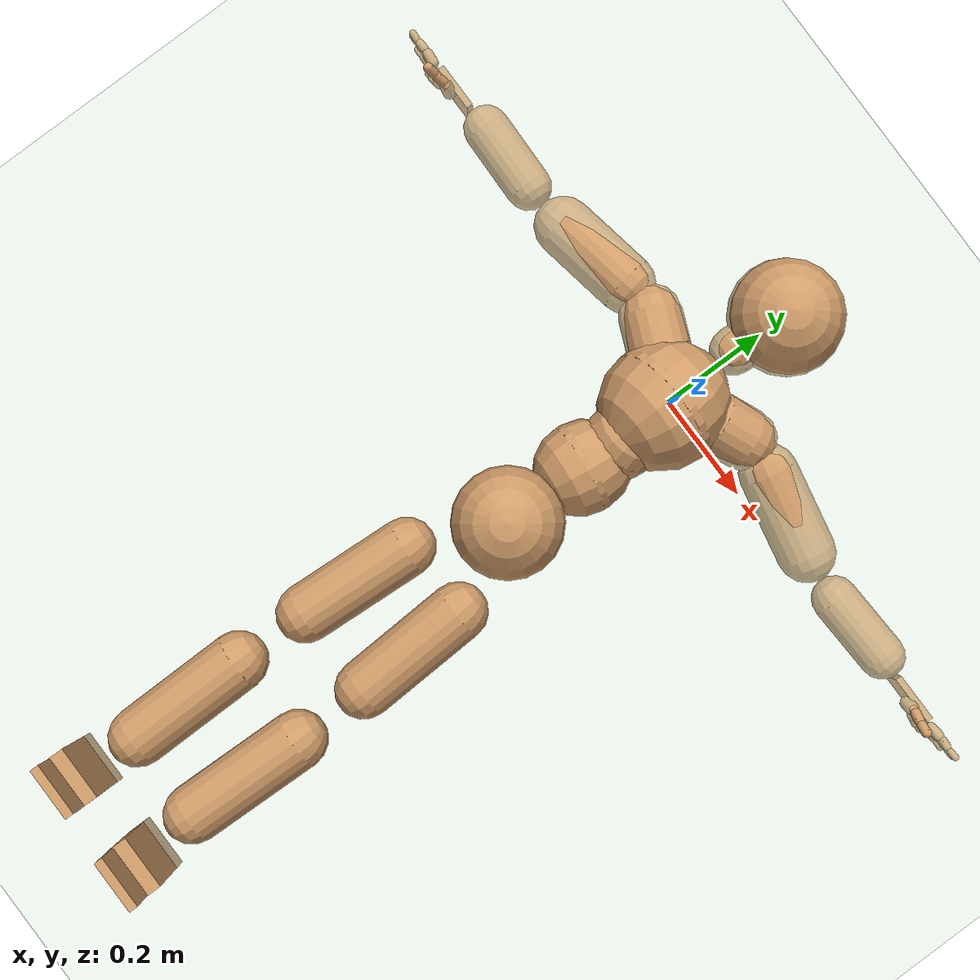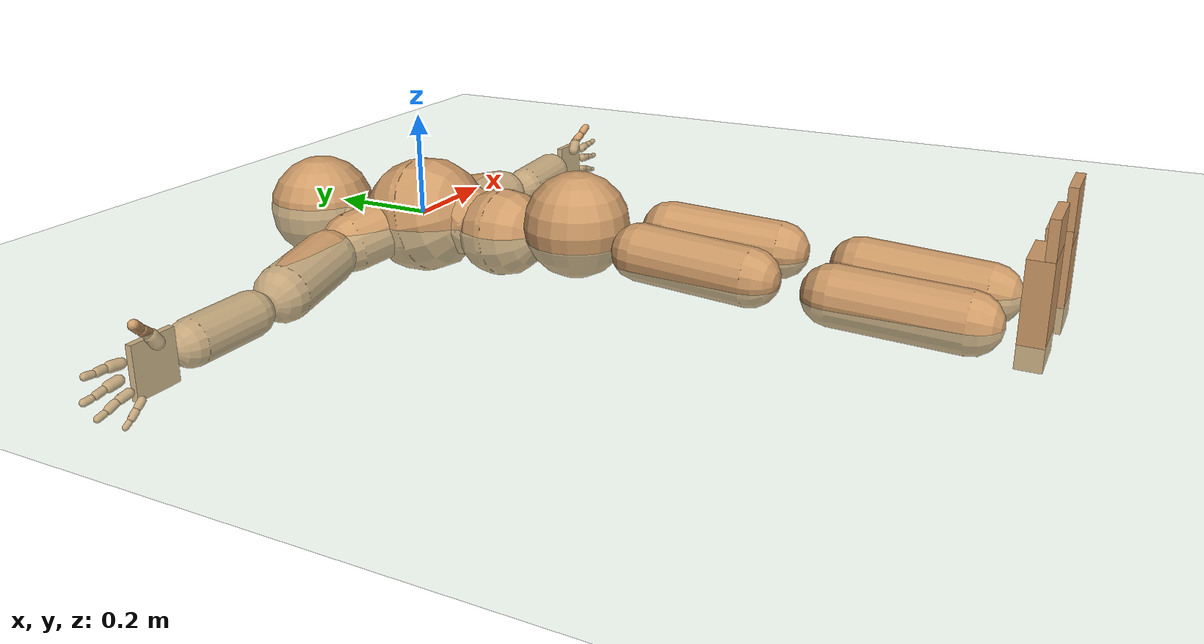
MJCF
<mujoco model="humanoid">
  <compiler coordinate="local"/>
  <default>
    <joint damping="0.0" armature="0.01" stiffness="0.0" limited="true"/>
    <geom conaffinity="1" condim="3" contype="7" margin="0.001" rgba="0.8 0.6 .4 1"/>
  </default>
  <asset>
    <texture type="skybox" builtin="gradient" rgb1=".4 .5 .6" rgb2="0 0 0" width="100" height="100"/>
    <texture builtin="flat" height="1278" mark="cross" markrgb="1 1 1" name="texgeom" random="0.01" rgb1="0.8 0.6 0.4" rgb2="0.8 0.6 0.4" type="cube" width="127"/>
    <texture builtin="checker" height="100" name="texplane" rgb1="0 0 0" rgb2="0.8 0.8 0.8" type="2d" width="100"/>
    <material name="MatPlane" reflectance="0.5" shininess="1" specular="1" texrepeat="60 60" texture="texplane"/>
    <material name="geom" texture="texgeom" texuniform="true"/>
  </asset>
  <worldbody>
    <light cutoff="100" diffuse="1 1 1" dir="-0 0 -1.3" directional="true" exponent="1" pos="0 0 1.3" specular=".1 .1 .1"/>
    <geom conaffinity="1" condim="3" name="floor" pos="0 0 0" rgba="0.8 0.9 0.8 1" size="100 100 .2" type="plane" material="MatPlane"/>
    <body name="Pelvis" pos="0.0002 -0.3532 0.0255">
      <freejoint name="Pelvis"/>
      <geom type="sphere" contype="1" conaffinity="1" density="4629.6296296296305" size="0.1012" pos="0.0000 0.0000 0.0000" name="Pelvis"/>
      <body name="L_Hip" pos="0.0688 -0.0903 -0.0022">
        <joint name="L_Hip_x" type="hinge" pos="0 0 0" axis="1 0 0" stiffness="800" damping="80" armature="0.02" range="-90.0000 90.0000"/>
        <joint name="L_Hip_y" type="hinge" pos="0 0 0" axis="0 1 0" stiffness="800" damping="80" armature="0.02" range="-90.0000 90.0000"/>
        <joint name="L_Hip_z" type="hinge" pos="0 0 0" axis="0 0 1" stiffness="800" damping="80" armature="0.02" range="-90.0000 90.0000"/>
        <geom type="capsule" contype="1" conaffinity="1" density="2040.816327" fromto="0.0035 -0.0711 -0.0041 0.0142 -0.2844 -0.0162" size="0.053" name="L_Hip"/>
        <body name="L_Knee" pos="0.0177 -0.3555 -0.0203">
          <joint name="L_Knee_x" type="hinge" pos="0 0 0" axis="1 0 0" stiffness="800" damping="80" armature="0.02" range="-180.0000 180.0000"/>
          <joint name="L_Knee_y" type="hinge" pos="0 0 0" axis="0 1 0" stiffness="800" damping="80" armature="0.02" range="-5.6250 5.6250"/>
          <joint name="L_Knee_z" type="hinge" pos="0 0 0" axis="0 0 1" stiffness="800" damping="80" armature="0.02" range="-5.6250 5.6250"/>
          <geom type="capsule" contype="1" conaffinity="1" density="1234.567901" fromto="-0.0018 -0.0755 -0.0035 -0.0072 -0.3019 -0.0139" size="0.0535" name="L_Knee"/>
          <body name="L_Ankle" pos="-0.009 -0.3774 -0.0174">
            <joint name="L_Ankle_x" type="hinge" pos="0 0 0" axis="1 0 0" stiffness="800" damping="80" armature="0.02" range="-90.0000 90.0000"/>
            <joint name="L_Ankle_y" type="hinge" pos="0 0 0" axis="0 1 0" stiffness="800" damping="80" armature="0.02" range="-90.0000 90.0000"/>
            <joint name="L_Ankle_z" type="hinge" pos="0 0 0" axis="0 0 1" stiffness="800" damping="80" armature="0.02" range="-90.0000 90.0000"/>
            <geom type="box" contype="1" conaffinity="1" density="1000.00005" pos="0.0111 -0.0220 0.0544" size="0.0497 0.0209 0.0875" quat="1.0000 0.0000 0.0000 0.0000" name="L_Ankle"/>
            <body name="L_Toe" pos="0.0223 -0.044 0.1088">
              <joint name="L_Toe_x" type="hinge" pos="0 0 0" axis="1 0 0" stiffness="500" damping="50" armature="0.02" range="-90.0000 90.0000"/>
              <joint name="L_Toe_y" type="hinge" pos="0 0 0" axis="0 1 0" stiffness="500" damping="50" armature="0.02" range="-45.0000 45.0000"/>
              <joint name="L_Toe_z" type="hinge" pos="0 0 0" axis="0 0 1" stiffness="500" damping="50" armature="0.02" range="-45.0000 45.0000"/>
              <geom type="box" contype="1" conaffinity="1" density="1000.000047" pos="-0.0111 0.0091 0.0554" size="0.0491 0.0081 0.0491" quat="1.0000 0.0000 0.0000 0.0000" name="L_Toe"/>
            </body>
          </body>
        </body>
      </body>
      <body name="R_Hip" pos="-0.0677 -0.0965 -0.0041">
        <joint name="R_Hip_x" type="hinge" pos="0 0 0" axis="1 0 0" stiffness="800" damping="80" armature="0.02" range="-90.0000 90.0000"/>
        <joint name="R_Hip_y" type="hinge" pos="0 0 0" axis="0 1 0" stiffness="800" damping="80" armature="0.02" range="-90.0000 90.0000"/>
        <joint name="R_Hip_z" type="hinge" pos="0 0 0" axis="0 0 1" stiffness="800" damping="80" armature="0.02" range="-90.0000 90.0000"/>
        <geom type="capsule" contype="1" conaffinity="1" density="2040.816327" fromto="-0.0042 -0.0703 -0.0027 -0.0168 -0.2813 -0.0108" size="0.0528" name="R_Hip"/>
        <body name="R_Knee" pos="-0.0211 -0.3516 -0.0135">
          <joint name="R_Knee_x" type="hinge" pos="0 0 0" axis="1 0 0" stiffness="800" damping="80" armature="0.02" range="-180.0000 180.0000"/>
          <joint name="R_Knee_y" type="hinge" pos="0 0 0" axis="0 1 0" stiffness="800" damping="80" armature="0.02" range="-5.6250 5.6250"/>
          <joint name="R_Knee_z" type="hinge" pos="0 0 0" axis="0 0 1" stiffness="800" damping="80" armature="0.02" range="-5.6250 5.6250"/>
          <geom type="capsule" contype="1" conaffinity="1" density="1234.567901" fromto="0.0007 -0.0737 -0.0027 0.0026 -0.2949 -0.0110" size="0.0534" name="R_Knee"/>
          <body name="R_Ankle" pos="0.0033 -0.3686 -0.0137">
            <joint name="R_Ankle_x" type="hinge" pos="0 0 0" axis="1 0 0" stiffness="800" damping="80" armature="0.02" range="-90.0000 90.0000"/>
            <joint name="R_Ankle_y" type="hinge" pos="0 0 0" axis="0 1 0" stiffness="800" damping="80" armature="0.02" range="-90.0000 90.0000"/>
            <joint name="R_Ankle_z" type="hinge" pos="0 0 0" axis="0 0 1" stiffness="800" damping="80" armature="0.02" range="-90.0000 90.0000"/>
            <geom type="box" contype="1" conaffinity="1" density="999.99999" pos="-0.0088 -0.0237 0.0513" size="0.0497 0.0209 0.0875" quat="1.0000 0.0000 0.0000 0.0000" name="R_Ankle"/>
            <body name="R_Toe" pos="-0.0175 -0.0473 0.1027">
              <joint name="R_Toe_x" type="hinge" pos="0 0 0" axis="1 0 0" stiffness="500" damping="50" armature="0.02" range="-90.0000 90.0000"/>
              <joint name="R_Toe_y" type="hinge" pos="0 0 0" axis="0 1 0" stiffness="500" damping="50" armature="0.02" range="-45.0000 45.0000"/>
              <joint name="R_Toe_z" type="hinge" pos="0 0 0" axis="0 0 1" stiffness="500" damping="50" armature="0.02" range="-45.0000 45.0000"/>
              <geom type="box" contype="1" conaffinity="1" density="999.999877" pos="0.0088 0.0108 0.0523" size="0.0491 0.0081 0.0491" quat="1.0000 0.0000 0.0000 0.0000" name="R_Toe"/>
            </body>
          </body>
        </body>
      </body>
      <body name="Torso" pos="-0.0055 0.1042 -0.0338">
        <joint name="Torso_x" type="hinge" pos="0 0 0" axis="1 0 0" stiffness="1000" damping="100" armature="0.02" range="-60.0000 60.0000"/>
        <joint name="Torso_y" type="hinge" pos="0 0 0" axis="0 1 0" stiffness="1000" damping="100" armature="0.02" range="-60.0000 60.0000"/>
        <joint name="Torso_z" type="hinge" pos="0 0 0" axis="0 0 1" stiffness="1000" damping="100" armature="0.02" range="-60.0000 60.0000"/>
        <geom type="capsule" contype="1" conaffinity="1" density="2040.816327" fromto="0.0059 0.0533 -0.0050 0.0072 0.0652 -0.0061" size="0.0846" name="Torso"/>
        <body name="Spine" pos="0.0131 0.1185 -0.0112">
          <joint name="Spine_x" type="hinge" pos="0 0 0" axis="1 0 0" stiffness="1000" damping="100" armature="0.02" range="-60.0000 60.0000"/>
          <joint name="Spine_y" type="hinge" pos="0 0 0" axis="0 1 0" stiffness="1000" damping="100" armature="0.02" range="-60.0000 60.0000"/>
          <joint name="Spine_z" type="hinge" pos="0 0 0" axis="0 0 1" stiffness="1000" damping="100" armature="0.02" range="-60.0000 60.0000"/>
          <geom type="capsule" contype="1" conaffinity="1" density="2040.816327" fromto="-0.0035 0.0204 0.0159 -0.0042 0.0249 0.0195" size="0.0687" name="Spine"/>
          <body name="Chest" pos="-0.0077 0.0453 0.0354">
            <joint name="Chest_x" type="hinge" pos="0 0 0" axis="1 0 0" stiffness="1000" damping="100" armature="0.02" range="-60.0000 60.0000"/>
            <joint name="Chest_y" type="hinge" pos="0 0 0" axis="0 1 0" stiffness="1000" damping="100" armature="0.02" range="-60.0000 60.0000"/>
            <joint name="Chest_z" type="hinge" pos="0 0 0" axis="0 0 1" stiffness="1000" damping="100" armature="0.02" range="-60.0000 60.0000"/>
            <geom type="capsule" contype="1" conaffinity="1" density="2040.816327" fromto="-0.0015 0.0677 -0.0157 -0.0018 0.0827 -0.0192" size="0.1139" name="Chest"/>
            <body name="Neck" pos="-0.0065 0.2095 -0.0512">
              <joint name="Neck_x" type="hinge" pos="0 0 0" axis="1 0 0" stiffness="500" damping="50" armature="0.02" range="-180.0000 180.0000"/>
              <joint name="Neck_y" type="hinge" pos="0 0 0" axis="0 1 0" stiffness="500" damping="50" armature="0.02" range="-180.0000 180.0000"/>
              <joint name="Neck_z" type="hinge" pos="0 0 0" axis="0 0 1" stiffness="500" damping="50" armature="0.02" range="-180.0000 180.0000"/>
              <geom type="capsule" contype="1" conaffinity="1" density="1000" fromto="0.0019 0.0273 0.0024 0.0077 0.1090 0.0096" size="0.044" name="Neck"/>
              <body name="Head" pos="0.0097 0.1363 0.012">
                <joint name="Head_x" type="hinge" pos="0 0 0" axis="1 0 0" stiffness="500" damping="50" armature="0.02" range="-90.0000 90.0000"/>
                <joint name="Head_y" type="hinge" pos="0 0 0" axis="0 1 0" stiffness="500" damping="50" armature="0.02" range="-90.0000 90.0000"/>
                <joint name="Head_z" type="hinge" pos="0 0 0" axis="0 0 1" stiffness="500" damping="50" armature="0.02" range="-90.0000 90.0000"/>
                <geom type="sphere" contype="1" conaffinity="1" density="1000" size="0.1068" pos="0.0000 0.0000 0.0000" name="Head"/>
              </body>
            </body>
            <body name="L_Thorax" pos="0.0577 0.1229 -0.0233">
              <joint name="L_Thorax_x" type="hinge" pos="0 0 0" axis="1 0 0" stiffness="500" damping="50" armature="0.02" range="-180.0000 180.0000"/>
              <joint name="L_Thorax_y" type="hinge" pos="0 0 0" axis="0 1 0" stiffness="500" damping="50" armature="0.02" range="-180.0000 180.0000"/>
              <joint name="L_Thorax_z" type="hinge" pos="0 0 0" axis="0 0 1" stiffness="500" damping="50" armature="0.02" range="-180.0000 180.0000"/>
              <geom type="capsule" contype="1" conaffinity="1" density="1000" fromto="0.0191 0.0089 -0.0058 0.0764 0.0354 -0.0234" size="0.0571" name="L_Thorax"/>
              <body name="L_Shoulder" pos="0.0955 0.0443 -0.0292">
                <joint name="L_Shoulder_x" type="hinge" pos="0 0 0" axis="1 0 0" stiffness="500" damping="50" armature="0.02" range="-180.0000 180.0000"/>
                <joint name="L_Shoulder_y" type="hinge" pos="0 0 0" axis="0 1 0" stiffness="500" damping="50" armature="0.02" range="-180.0000 180.0000"/>
                <joint name="L_Shoulder_z" type="hinge" pos="0 0 0" axis="0 0 1" stiffness="500" damping="50" armature="0.02" range="-180.0000 180.0000"/>
                <geom type="capsule" contype="1" conaffinity="1" density="1000" fromto="0.0529 -0.0099 -0.0064 0.2117 -0.0395 -0.0254" size="0.0535" name="L_Shoulder"/>
                <body name="L_Elbow" pos="0.2647 -0.0493 -0.0318">
                  <joint name="L_Elbow_x" type="hinge" pos="0 0 0" axis="1 0 0" stiffness="500" damping="50" armature="0.02" range="-720.0000 720.0000"/>
                  <joint name="L_Elbow_y" type="hinge" pos="0 0 0" axis="0 1 0" stiffness="500" damping="50" armature="0.02" range="-720.0000 720.0000"/>
                  <joint name="L_Elbow_z" type="hinge" pos="0 0 0" axis="0 0 1" stiffness="500" damping="50" armature="0.02" range="-720.0000 720.0000"/>
                  <geom type="capsule" contype="1" conaffinity="1" density="1000" fromto="0.0435 0.0019 0.0015 0.1742 0.0077 0.0060" size="0.0423" name="L_Elbow"/>
                  <body name="L_Wrist" pos="0.2177 0.0096 0.0075">
                    <joint name="L_Wrist_x" type="hinge" pos="0 0 0" axis="1 0 0" stiffness="300" damping="30" armature="0.02" range="-180.0000 180.0000"/>
                    <joint name="L_Wrist_y" type="hinge" pos="0 0 0" axis="0 1 0" stiffness="300" damping="30" armature="0.02" range="-180.0000 180.0000"/>
                    <joint name="L_Wrist_z" type="hinge" pos="0 0 0" axis="0 0 1" stiffness="300" damping="30" armature="0.02" range="-180.0000 180.0000"/>
                    <geom type="box" contype="1" conaffinity="1" density="2541.499718" pos="0.0416 -0.0074 -0.0022" size="0.0462 0.0059 0.0479" quat="1.0000 0.0000 0.0000 0.0000" name="L_Wrist"/>
                    <body name="L_Index1" pos="0.0987 -0.0117 0.0223">
                      <joint name="L_Index1_x" type="hinge" pos="0 0 0" axis="1 0 0" stiffness="100" damping="10" armature="0.02" range="-180.0000 180.0000"/>
                      <joint name="L_Index1_y" type="hinge" pos="0 0 0" axis="0 1 0" stiffness="100" damping="10" armature="0.02" range="-180.0000 180.0000"/>
                      <joint name="L_Index1_z" type="hinge" pos="0 0 0" axis="0 0 1" stiffness="100" damping="10" armature="0.02" range="-180.0000 180.0000"/>
                      <geom type="capsule" contype="1" conaffinity="1" density="1000" fromto="0.0063 0.0007 0.0006 0.0253 0.0027 0.0023" size="0.0094" name="L_Index1"/>
                      <body name="L_Index2" pos="0.0316 0.0034 0.0029">
                        <joint name="L_Index2_x" type="hinge" pos="0 0 0" axis="1 0 0" stiffness="100" damping="10" armature="0.02" range="-180.0000 180.0000"/>
                        <joint name="L_Index2_y" type="hinge" pos="0 0 0" axis="0 1 0" stiffness="100" damping="10" armature="0.02" range="-180.0000 180.0000"/>
                        <joint name="L_Index2_z" type="hinge" pos="0 0 0" axis="0 0 1" stiffness="100" damping="10" armature="0.02" range="-180.0000 180.0000"/>
                        <geom type="capsule" contype="1" conaffinity="1" density="1000" fromto="0.0044 -0.0003 0.0001 0.0177 -0.0010 0.0003" size="0.0076" name="L_Index2"/>
                        <body name="L_Index3" pos="0.0221 -0.0013 0.0004">
                          <joint name="L_Index3_x" type="hinge" pos="0 0 0" axis="1 0 0" stiffness="100" damping="10" armature="0.02" range="-180.0000 180.0000"/>
                          <joint name="L_Index3_y" type="hinge" pos="0 0 0" axis="0 1 0" stiffness="100" damping="10" armature="0.02" range="-180.0000 180.0000"/>
                          <joint name="L_Index3_z" type="hinge" pos="0 0 0" axis="0 0 1" stiffness="100" damping="10" armature="0.02" range="-180.0000 180.0000"/>
                          <geom type="capsule" contype="1" conaffinity="1" density="1000" fromto="0.0048 0.0001 0.0005 0.0193 0.0006 0.0019" size="0.0063" name="L_Index3"/>
                        </body>
                      </body>
                    </body>
                    <body name="L_Middle1" pos="0.1058 -0.0092 -0.0026">
                      <joint name="L_Middle1_x" type="hinge" pos="0 0 0" axis="1 0 0" stiffness="100" damping="10" armature="0.02" range="-180.0000 180.0000"/>
                      <joint name="L_Middle1_y" type="hinge" pos="0 0 0" axis="0 1 0" stiffness="100" damping="10" armature="0.02" range="-180.0000 180.0000"/>
                      <joint name="L_Middle1_z" type="hinge" pos="0 0 0" axis="0 0 1" stiffness="100" damping="10" armature="0.02" range="-180.0000 180.0000"/>
                      <geom type="capsule" contype="1" conaffinity="1" density="1000" fromto="0.0060 0.0003 -0.0008 0.0239 0.0013 -0.0033" size="0.0098" name="L_Middle1"/>
                      <body name="L_Middle2" pos="0.0299 0.0016 -0.0041">
                        <joint name="L_Middle2_x" type="hinge" pos="0 0 0" axis="1 0 0" stiffness="100" damping="10" armature="0.02" range="-180.0000 180.0000"/>
                        <joint name="L_Middle2_y" type="hinge" pos="0 0 0" axis="0 1 0" stiffness="100" damping="10" armature="0.02" range="-180.0000 180.0000"/>
                        <joint name="L_Middle2_z" type="hinge" pos="0 0 0" axis="0 0 1" stiffness="100" damping="10" armature="0.02" range="-180.0000 180.0000"/>
                        <geom type="capsule" contype="1" conaffinity="1" density="1000" fromto="0.0046 -0.0002 -0.0008 0.0184 -0.0006 -0.0032" size="0.0071" name="L_Middle2"/>
                        <body name="L_Middle3" pos="0.023 -0.0008 -0.004">
                          <joint name="L_Middle3_x" type="hinge" pos="0 0 0" axis="1 0 0" stiffness="100" damping="10" armature="0.02" range="-180.0000 180.0000"/>
                          <joint name="L_Middle3_y" type="hinge" pos="0 0 0" axis="0 1 0" stiffness="100" damping="10" armature="0.02" range="-180.0000 180.0000"/>
                          <joint name="L_Middle3_z" type="hinge" pos="0 0 0" axis="0 0 1" stiffness="100" damping="10" armature="0.02" range="-180.0000 180.0000"/>
                          <geom type="capsule" contype="1" conaffinity="1" density="1000" fromto="0.0050 0.0002 -0.0004 0.0200 0.0010 -0.0016" size="0.0061" name="L_Middle3"/>
                        </body>
                      </body>
                    </body>
                    <body name="L_Pinky1" pos="0.0797 -0.0188 -0.0443">
                      <joint name="L_Pinky1_x" type="hinge" pos="0 0 0" axis="1 0 0" stiffness="100" damping="10" armature="0.02" range="-180.0000 180.0000"/>
                      <joint name="L_Pinky1_y" type="hinge" pos="0 0 0" axis="0 1 0" stiffness="100" damping="10" armature="0.02" range="-180.0000 180.0000"/>
                      <joint name="L_Pinky1_z" type="hinge" pos="0 0 0" axis="0 0 1" stiffness="100" damping="10" armature="0.02" range="-180.0000 180.0000"/>
                      <geom type="capsule" contype="1" conaffinity="1" density="1000" fromto="0.0029 -0.0001 -0.0025 0.0118 -0.0004 -0.0100" size="0.0069" name="L_Pinky1"/>
                      <body name="L_Pinky2" pos="0.0147 -0.0006 -0.0125">
                        <joint name="L_Pinky2_x" type="hinge" pos="0 0 0" axis="1 0 0" stiffness="100" damping="10" armature="0.02" range="-180.0000 180.0000"/>
                        <joint name="L_Pinky2_y" type="hinge" pos="0 0 0" axis="0 1 0" stiffness="100" damping="10" armature="0.02" range="-180.0000 180.0000"/>
                        <joint name="L_Pinky2_z" type="hinge" pos="0 0 0" axis="0 0 1" stiffness="100" damping="10" armature="0.02" range="-180.0000 180.0000"/>
                        <geom type="capsule" contype="1" conaffinity="1" density="1000" fromto="0.0030 -0.0002 -0.0023 0.0118 -0.0008 -0.0093" size="0.0066" name="L_Pinky2"/>
                        <body name="L_Pinky3" pos="0.0148 -0.001 -0.0117">
                          <joint name="L_Pinky3_x" type="hinge" pos="0 0 0" axis="1 0 0" stiffness="100" damping="10" armature="0.02" range="-180.0000 180.0000"/>
                          <joint name="L_Pinky3_y" type="hinge" pos="0 0 0" axis="0 1 0" stiffness="100" damping="10" armature="0.02" range="-180.0000 180.0000"/>
                          <joint name="L_Pinky3_z" type="hinge" pos="0 0 0" axis="0 0 1" stiffness="100" damping="10" armature="0.02" range="-180.0000 180.0000"/>
                          <geom type="capsule" contype="1" conaffinity="1" density="1000" fromto="0.0034 0.0002 -0.0019 0.0134 0.0008 -0.0077" size="0.0049" name="L_Pinky3"/>
                        </body>
                      </body>
                    </body>
                    <body name="L_Ring1" pos="0.0933 -0.0127 -0.0276">
                      <joint name="L_Ring1_x" type="hinge" pos="0 0 0" axis="1 0 0" stiffness="100" damping="10" armature="0.02" range="-180.0000 180.0000"/>
                      <joint name="L_Ring1_y" type="hinge" pos="0 0 0" axis="0 1 0" stiffness="100" damping="10" armature="0.02" range="-180.0000 180.0000"/>
                      <joint name="L_Ring1_z" type="hinge" pos="0 0 0" axis="0 0 1" stiffness="100" damping="10" armature="0.02" range="-180.0000 180.0000"/>
                      <geom type="capsule" contype="1" conaffinity="1" density="1000" fromto="0.0055 0.0004 -0.0012 0.0220 0.0015 -0.0047" size="0.0084" name="L_Ring1"/>
                      <body name="L_Ring2" pos="0.0275 0.0019 -0.0059">
                        <joint name="L_Ring2_x" type="hinge" pos="0 0 0" axis="1 0 0" stiffness="100" damping="10" armature="0.02" range="-180.0000 180.0000"/>
                        <joint name="L_Ring2_y" type="hinge" pos="0 0 0" axis="0 1 0" stiffness="100" damping="10" armature="0.02" range="-180.0000 180.0000"/>
                        <joint name="L_Ring2_z" type="hinge" pos="0 0 0" axis="0 0 1" stiffness="100" damping="10" armature="0.02" range="-180.0000 180.0000"/>
                        <geom type="capsule" contype="1" conaffinity="1" density="1000" fromto="0.0044 -0.0002 -0.0015 0.0178 -0.0010 -0.0060" size="0.0076" name="L_Ring2"/>
                        <body name="L_Ring3" pos="0.0222 -0.0012 -0.0074">
                          <joint name="L_Ring3_x" type="hinge" pos="0 0 0" axis="1 0 0" stiffness="100" damping="10" armature="0.02" range="-180.0000 180.0000"/>
                          <joint name="L_Ring3_y" type="hinge" pos="0 0 0" axis="0 1 0" stiffness="100" damping="10" armature="0.02" range="-180.0000 180.0000"/>
                          <joint name="L_Ring3_z" type="hinge" pos="0 0 0" axis="0 0 1" stiffness="100" damping="10" armature="0.02" range="-180.0000 180.0000"/>
                          <geom type="capsule" contype="1" conaffinity="1" density="1000" fromto="0.0048 0.0002 -0.0011 0.0194 0.0006 -0.0044" size="0.0058" name="L_Ring3"/>
                        </body>
                      </body>
                    </body>
                    <body name="L_Thumb1" pos="0.0385 -0.0215 0.0297">
                      <joint name="L_Thumb1_x" type="hinge" pos="0 0 0" axis="1 0 0" stiffness="100" damping="10" armature="0.02" range="-180.0000 180.0000"/>
                      <joint name="L_Thumb1_y" type="hinge" pos="0 0 0" axis="0 1 0" stiffness="100" damping="10" armature="0.02" range="-180.0000 180.0000"/>
                      <joint name="L_Thumb1_z" type="hinge" pos="0 0 0" axis="0 0 1" stiffness="100" damping="10" armature="0.02" range="-180.0000 180.0000"/>
                      <geom type="capsule" contype="1" conaffinity="1" density="1000" fromto="0.0032 0.0002 0.0050 0.0129 0.0008 0.0200" size="0.012" name="L_Thumb1"/>
                      <body name="L_Thumb2" pos="0.0162 0.001 0.025">
                        <joint name="L_Thumb2_x" type="hinge" pos="0 0 0" axis="1 0 0" stiffness="100" damping="10" armature="0.02" range="-180.0000 180.0000"/>
                        <joint name="L_Thumb2_y" type="hinge" pos="0 0 0" axis="0 1 0" stiffness="100" damping="10" armature="0.02" range="-180.0000 180.0000"/>
                        <joint name="L_Thumb2_z" type="hinge" pos="0 0 0" axis="0 0 1" stiffness="100" damping="10" armature="0.02" range="-180.0000 180.0000"/>
                        <geom type="capsule" contype="1" conaffinity="1" density="1000" fromto="0.0039 -0.0013 0.0030 0.0156 -0.0050 0.0119" size="0.0094" name="L_Thumb2"/>
                        <body name="L_Thumb3" pos="0.0194 -0.0063 0.0149">
                          <joint name="L_Thumb3_x" type="hinge" pos="0 0 0" axis="1 0 0" stiffness="100" damping="10" armature="0.02" range="-180.0000 180.0000"/>
                          <joint name="L_Thumb3_y" type="hinge" pos="0 0 0" axis="0 1 0" stiffness="100" damping="10" armature="0.02" range="-180.0000 180.0000"/>
                          <joint name="L_Thumb3_z" type="hinge" pos="0 0 0" axis="0 0 1" stiffness="100" damping="10" armature="0.02" range="-180.0000 180.0000"/>
                          <geom type="capsule" contype="1" conaffinity="1" density="1000" fromto="0.0043 -0.0009 0.0034 0.0172 -0.0034 0.0135" size="0.009" name="L_Thumb3"/>
                        </body>
                      </body>
                    </body>
                  </body>
                </body>
              </body>
            </body>
            <body name="R_Thorax" pos="-0.061 0.1187 -0.0303">
              <joint name="R_Thorax_x" type="hinge" pos="0 0 0" axis="1 0 0" stiffness="500" damping="50" armature="0.02" range="-180.0000 180.0000"/>
              <joint name="R_Thorax_y" type="hinge" pos="0 0 0" axis="0 1 0" stiffness="500" damping="50" armature="0.02" range="-180.0000 180.0000"/>
              <joint name="R_Thorax_z" type="hinge" pos="0 0 0" axis="0 0 1" stiffness="500" damping="50" armature="0.02" range="-180.0000 180.0000"/>
              <geom type="capsule" contype="1" conaffinity="1" density="1000" fromto="-0.0207 0.0092 -0.0043 -0.0826 0.0368 -0.0172" size="0.0583" name="R_Thorax"/>
              <body name="R_Shoulder" pos="-0.1033 0.046 -0.0215">
                <joint name="R_Shoulder_x" type="hinge" pos="0 0 0" axis="1 0 0" stiffness="500" damping="50" armature="0.02" range="-180.0000 180.0000"/>
                <joint name="R_Shoulder_y" type="hinge" pos="0 0 0" axis="0 1 0" stiffness="500" damping="50" armature="0.02" range="-180.0000 180.0000"/>
                <joint name="R_Shoulder_z" type="hinge" pos="0 0 0" axis="0 0 1" stiffness="500" damping="50" armature="0.02" range="-180.0000 180.0000"/>
                <geom type="capsule" contype="1" conaffinity="1" density="1000" fromto="-0.0509 -0.0087 -0.0049 -0.2037 -0.0346 -0.0197" size="0.054" name="R_Shoulder"/>
                <body name="R_Elbow" pos="-0.2546 -0.0433 -0.0246">
                  <joint name="R_Elbow_x" type="hinge" pos="0 0 0" axis="1 0 0" stiffness="500" damping="50" armature="0.02" range="-720.0000 720.0000"/>
                  <joint name="R_Elbow_y" type="hinge" pos="0 0 0" axis="0 1 0" stiffness="500" damping="50" armature="0.02" range="-720.0000 720.0000"/>
                  <joint name="R_Elbow_z" type="hinge" pos="0 0 0" axis="0 0 1" stiffness="500" damping="50" armature="0.02" range="-720.0000 720.0000"/>
                  <geom type="capsule" contype="1" conaffinity="1" density="1000" fromto="-0.0436 0.0010 -0.0004 -0.1744 0.0041 -0.0017" size="0.0425" name="R_Elbow"/>
                  <body name="R_Wrist" pos="-0.218 0.0052 -0.0021">
                    <joint name="R_Wrist_x" type="hinge" pos="0 0 0" axis="1 0 0" stiffness="300" damping="30" armature="0.02" range="-180.0000 180.0000"/>
                    <joint name="R_Wrist_y" type="hinge" pos="0 0 0" axis="0 1 0" stiffness="300" damping="30" armature="0.02" range="-180.0000 180.0000"/>
                    <joint name="R_Wrist_z" type="hinge" pos="0 0 0" axis="0 0 1" stiffness="300" damping="30" armature="0.02" range="-180.0000 180.0000"/>
                    <geom type="box" contype="1" conaffinity="1" density="2541.50015" pos="-0.0411 -0.0069 -0.0014" size="0.0433 0.0061 0.0479" quat="1.0000 0.0000 0.0000 0.0000" name="R_Wrist"/>
                    <body name="R_Index1" pos="-0.0976 -0.0108 0.0241">
                      <joint name="R_Index1_x" type="hinge" pos="0 0 0" axis="1 0 0" stiffness="100" damping="10" armature="0.02" range="-180.0000 180.0000"/>
                      <joint name="R_Index1_y" type="hinge" pos="0 0 0" axis="0 1 0" stiffness="100" damping="10" armature="0.02" range="-180.0000 180.0000"/>
                      <joint name="R_Index1_z" type="hinge" pos="0 0 0" axis="0 0 1" stiffness="100" damping="10" armature="0.02" range="-180.0000 180.0000"/>
                      <geom type="capsule" contype="1" conaffinity="1" density="1000" fromto="-0.0063 0.0007 0.0006 -0.0253 0.0027 0.0023" size="0.0094" name="R_Index1"/>
                      <body name="R_Index2" pos="-0.0316 0.0034 0.0029">
                        <joint name="R_Index2_x" type="hinge" pos="0 0 0" axis="1 0 0" stiffness="100" damping="10" armature="0.02" range="-180.0000 180.0000"/>
                        <joint name="R_Index2_y" type="hinge" pos="0 0 0" axis="0 1 0" stiffness="100" damping="10" armature="0.02" range="-180.0000 180.0000"/>
                        <joint name="R_Index2_z" type="hinge" pos="0 0 0" axis="0 0 1" stiffness="100" damping="10" armature="0.02" range="-180.0000 180.0000"/>
                        <geom type="capsule" contype="1" conaffinity="1" density="1000" fromto="-0.0044 -0.0003 0.0001 -0.0177 -0.0010 0.0003" size="0.0076" name="R_Index2"/>
                        <body name="R_Index3" pos="-0.0221 -0.0013 0.0004">
                          <joint name="R_Index3_x" type="hinge" pos="0 0 0" axis="1 0 0" stiffness="100" damping="10" armature="0.02" range="-180.0000 180.0000"/>
                          <joint name="R_Index3_y" type="hinge" pos="0 0 0" axis="0 1 0" stiffness="100" damping="10" armature="0.02" range="-180.0000 180.0000"/>
                          <joint name="R_Index3_z" type="hinge" pos="0 0 0" axis="0 0 1" stiffness="100" damping="10" armature="0.02" range="-180.0000 180.0000"/>
                          <geom type="capsule" contype="1" conaffinity="1" density="1000" fromto="-0.0040 0.0001 0.0005 -0.0161 0.0006 0.0019" size="0.0066" name="R_Index3"/>
                        </body>
                      </body>
                    </body>
                    <body name="R_Middle1" pos="-0.1046 -0.0083 -0.0008">
                      <joint name="R_Middle1_x" type="hinge" pos="0 0 0" axis="1 0 0" stiffness="100" damping="10" armature="0.02" range="-180.0000 180.0000"/>
                      <joint name="R_Middle1_y" type="hinge" pos="0 0 0" axis="0 1 0" stiffness="100" damping="10" armature="0.02" range="-180.0000 180.0000"/>
                      <joint name="R_Middle1_z" type="hinge" pos="0 0 0" axis="0 0 1" stiffness="100" damping="10" armature="0.02" range="-180.0000 180.0000"/>
                      <geom type="capsule" contype="1" conaffinity="1" density="1000" fromto="-0.0060 0.0003 -0.0008 -0.0239 0.0013 -0.0033" size="0.0098" name="R_Middle1"/>
                      <body name="R_Middle2" pos="-0.0299 0.0016 -0.0041">
                        <joint name="R_Middle2_x" type="hinge" pos="0 0 0" axis="1 0 0" stiffness="100" damping="10" armature="0.02" range="-180.0000 180.0000"/>
                        <joint name="R_Middle2_y" type="hinge" pos="0 0 0" axis="0 1 0" stiffness="100" damping="10" armature="0.02" range="-180.0000 180.0000"/>
                        <joint name="R_Middle2_z" type="hinge" pos="0 0 0" axis="0 0 1" stiffness="100" damping="10" armature="0.02" range="-180.0000 180.0000"/>
                        <geom type="capsule" contype="1" conaffinity="1" density="1000" fromto="-0.0046 -0.0002 -0.0008 -0.0184 -0.0006 -0.0032" size="0.0071" name="R_Middle2"/>
                        <body name="R_Middle3" pos="-0.023 -0.0008 -0.004">
                          <joint name="R_Middle3_x" type="hinge" pos="0 0 0" axis="1 0 0" stiffness="100" damping="10" armature="0.02" range="-180.0000 180.0000"/>
                          <joint name="R_Middle3_y" type="hinge" pos="0 0 0" axis="0 1 0" stiffness="100" damping="10" armature="0.02" range="-180.0000 180.0000"/>
                          <joint name="R_Middle3_z" type="hinge" pos="0 0 0" axis="0 0 1" stiffness="100" damping="10" armature="0.02" range="-180.0000 180.0000"/>
                          <geom type="capsule" contype="1" conaffinity="1" density="1000" fromto="-0.0042 0.0002 -0.0004 -0.0168 0.0010 -0.0016" size="0.0064" name="R_Middle3"/>
                        </body>
                      </body>
                    </body>
                    <body name="R_Pinky1" pos="-0.0786 -0.0179 -0.0425">
                      <joint name="R_Pinky1_x" type="hinge" pos="0 0 0" axis="1 0 0" stiffness="100" damping="10" armature="0.02" range="-180.0000 180.0000"/>
                      <joint name="R_Pinky1_y" type="hinge" pos="0 0 0" axis="0 1 0" stiffness="100" damping="10" armature="0.02" range="-180.0000 180.0000"/>
                      <joint name="R_Pinky1_z" type="hinge" pos="0 0 0" axis="0 0 1" stiffness="100" damping="10" armature="0.02" range="-180.0000 180.0000"/>
                      <geom type="capsule" contype="1" conaffinity="1" density="1000" fromto="-0.0029 -0.0001 -0.0025 -0.0118 -0.0004 -0.0100" size="0.0069" name="R_Pinky1"/>
                      <body name="R_Pinky2" pos="-0.0147 -0.0006 -0.0125">
                        <joint name="R_Pinky2_x" type="hinge" pos="0 0 0" axis="1 0 0" stiffness="100" damping="10" armature="0.02" range="-180.0000 180.0000"/>
                        <joint name="R_Pinky2_y" type="hinge" pos="0 0 0" axis="0 1 0" stiffness="100" damping="10" armature="0.02" range="-180.0000 180.0000"/>
                        <joint name="R_Pinky2_z" type="hinge" pos="0 0 0" axis="0 0 1" stiffness="100" damping="10" armature="0.02" range="-180.0000 180.0000"/>
                        <geom type="capsule" contype="1" conaffinity="1" density="1000" fromto="-0.0030 -0.0002 -0.0023 -0.0118 -0.0008 -0.0093" size="0.0066" name="R_Pinky2"/>
                        <body name="R_Pinky3" pos="-0.0148 -0.001 -0.0117">
                          <joint name="R_Pinky3_x" type="hinge" pos="0 0 0" axis="1 0 0" stiffness="100" damping="10" armature="0.02" range="-180.0000 180.0000"/>
                          <joint name="R_Pinky3_y" type="hinge" pos="0 0 0" axis="0 1 0" stiffness="100" damping="10" armature="0.02" range="-180.0000 180.0000"/>
                          <joint name="R_Pinky3_z" type="hinge" pos="0 0 0" axis="0 0 1" stiffness="100" damping="10" armature="0.02" range="-180.0000 180.0000"/>
                          <geom type="capsule" contype="1" conaffinity="1" density="1000" fromto="-0.0026 0.0002 -0.0019 -0.0102 0.0008 -0.0077" size="0.0052" name="R_Pinky3"/>
                        </body>
                      </body>
                    </body>
                    <body name="R_Ring1" pos="-0.0922 -0.0118 -0.0259">
                      <joint name="R_Ring1_x" type="hinge" pos="0 0 0" axis="1 0 0" stiffness="100" damping="10" armature="0.02" range="-180.0000 180.0000"/>
                      <joint name="R_Ring1_y" type="hinge" pos="0 0 0" axis="0 1 0" stiffness="100" damping="10" armature="0.02" range="-180.0000 180.0000"/>
                      <joint name="R_Ring1_z" type="hinge" pos="0 0 0" axis="0 0 1" stiffness="100" damping="10" armature="0.02" range="-180.0000 180.0000"/>
                      <geom type="capsule" contype="1" conaffinity="1" density="1000" fromto="-0.0055 0.0004 -0.0012 -0.0220 0.0015 -0.0047" size="0.0084" name="R_Ring1"/>
                      <body name="R_Ring2" pos="-0.0275 0.0019 -0.0059">
                        <joint name="R_Ring2_x" type="hinge" pos="0 0 0" axis="1 0 0" stiffness="100" damping="10" armature="0.02" range="-180.0000 180.0000"/>
                        <joint name="R_Ring2_y" type="hinge" pos="0 0 0" axis="0 1 0" stiffness="100" damping="10" armature="0.02" range="-180.0000 180.0000"/>
                        <joint name="R_Ring2_z" type="hinge" pos="0 0 0" axis="0 0 1" stiffness="100" damping="10" armature="0.02" range="-180.0000 180.0000"/>
                        <geom type="capsule" contype="1" conaffinity="1" density="1000" fromto="-0.0044 -0.0002 -0.0015 -0.0178 -0.0010 -0.0060" size="0.0076" name="R_Ring2"/>
                        <body name="R_Ring3" pos="-0.0222 -0.0012 -0.0074">
                          <joint name="R_Ring3_x" type="hinge" pos="0 0 0" axis="1 0 0" stiffness="100" damping="10" armature="0.02" range="-180.0000 180.0000"/>
                          <joint name="R_Ring3_y" type="hinge" pos="0 0 0" axis="0 1 0" stiffness="100" damping="10" armature="0.02" range="-180.0000 180.0000"/>
                          <joint name="R_Ring3_z" type="hinge" pos="0 0 0" axis="0 0 1" stiffness="100" damping="10" armature="0.02" range="-180.0000 180.0000"/>
                          <geom type="capsule" contype="1" conaffinity="1" density="1000" fromto="-0.0040 0.0002 -0.0011 -0.0162 0.0006 -0.0044" size="0.0061" name="R_Ring3"/>
                        </body>
                      </body>
                    </body>
                    <body name="R_Thumb1" pos="-0.0374 -0.0206 0.0315">
                      <joint name="R_Thumb1_x" type="hinge" pos="0 0 0" axis="1 0 0" stiffness="100" damping="10" armature="0.02" range="-180.0000 180.0000"/>
                      <joint name="R_Thumb1_y" type="hinge" pos="0 0 0" axis="0 1 0" stiffness="100" damping="10" armature="0.02" range="-180.0000 180.0000"/>
                      <joint name="R_Thumb1_z" type="hinge" pos="0 0 0" axis="0 0 1" stiffness="100" damping="10" armature="0.02" range="-180.0000 180.0000"/>
                      <geom type="capsule" contype="1" conaffinity="1" density="1000" fromto="-0.0032 0.0002 0.0050 -0.0129 0.0008 0.0200" size="0.012" name="R_Thumb1"/>
                      <body name="R_Thumb2" pos="-0.0162 0.001 0.025">
                        <joint name="R_Thumb2_x" type="hinge" pos="0 0 0" axis="1 0 0" stiffness="100" damping="10" armature="0.02" range="-180.0000 180.0000"/>
                        <joint name="R_Thumb2_y" type="hinge" pos="0 0 0" axis="0 1 0" stiffness="100" damping="10" armature="0.02" range="-180.0000 180.0000"/>
                        <joint name="R_Thumb2_z" type="hinge" pos="0 0 0" axis="0 0 1" stiffness="100" damping="10" armature="0.02" range="-180.0000 180.0000"/>
                        <geom type="capsule" contype="1" conaffinity="1" density="1000" fromto="-0.0039 -0.0013 0.0030 -0.0156 -0.0050 0.0119" size="0.0094" name="R_Thumb2"/>
                        <body name="R_Thumb3" pos="-0.0194 -0.0063 0.0148">
                          <joint name="R_Thumb3_x" type="hinge" pos="0 0 0" axis="1 0 0" stiffness="100" damping="10" armature="0.02" range="-180.0000 180.0000"/>
                          <joint name="R_Thumb3_y" type="hinge" pos="0 0 0" axis="0 1 0" stiffness="100" damping="10" armature="0.02" range="-180.0000 180.0000"/>
                          <joint name="R_Thumb3_z" type="hinge" pos="0 0 0" axis="0 0 1" stiffness="100" damping="10" armature="0.02" range="-180.0000 180.0000"/>
                          <geom type="capsule" contype="1" conaffinity="1" density="1000" fromto="-0.0035 -0.0009 0.0034 -0.0140 -0.0034 0.0135" size="0.0092" name="R_Thumb3"/>
                        </body>
                      </body>
                    </body>
                  </body>
                </body>
              </body>
            </body>
          </body>
        </body>
      </body>
    </body>
  </worldbody>
  <actuator>
    <motor name="L_Hip_x" joint="L_Hip_x" gear="500"/>
    <motor name="L_Hip_y" joint="L_Hip_y" gear="500"/>
    <motor name="L_Hip_z" joint="L_Hip_z" gear="500"/>
    <motor name="L_Knee_x" joint="L_Knee_x" gear="500"/>
    <motor name="L_Knee_y" joint="L_Knee_y" gear="500"/>
    <motor name="L_Knee_z" joint="L_Knee_z" gear="500"/>
    <motor name="L_Ankle_x" joint="L_Ankle_x" gear="500"/>
    <motor name="L_Ankle_y" joint="L_Ankle_y" gear="500"/>
    <motor name="L_Ankle_z" joint="L_Ankle_z" gear="500"/>
    <motor name="L_Toe_x" joint="L_Toe_x" gear="500"/>
    <motor name="L_Toe_y" joint="L_Toe_y" gear="500"/>
    <motor name="L_Toe_z" joint="L_Toe_z" gear="500"/>
    <motor name="R_Hip_x" joint="R_Hip_x" gear="500"/>
    <motor name="R_Hip_y" joint="R_Hip_y" gear="500"/>
    <motor name="R_Hip_z" joint="R_Hip_z" gear="500"/>
    <motor name="R_Knee_x" joint="R_Knee_x" gear="500"/>
    <motor name="R_Knee_y" joint="R_Knee_y" gear="500"/>
    <motor name="R_Knee_z" joint="R_Knee_z" gear="500"/>
    <motor name="R_Ankle_x" joint="R_Ankle_x" gear="500"/>
    <motor name="R_Ankle_y" joint="R_Ankle_y" gear="500"/>
    <motor name="R_Ankle_z" joint="R_Ankle_z" gear="500"/>
    <motor name="R_Toe_x" joint="R_Toe_x" gear="500"/>
    <motor name="R_Toe_y" joint="R_Toe_y" gear="500"/>
    <motor name="R_Toe_z" joint="R_Toe_z" gear="500"/>
    <motor name="Torso_x" joint="Torso_x" gear="500"/>
    <motor name="Torso_y" joint="Torso_y" gear="500"/>
    <motor name="Torso_z" joint="Torso_z" gear="500"/>
    <motor name="Spine_x" joint="Spine_x" gear="500"/>
    <motor name="Spine_y" joint="Spine_y" gear="500"/>
    <motor name="Spine_z" joint="Spine_z" gear="500"/>
    <motor name="Chest_x" joint="Chest_x" gear="500"/>
    <motor name="Chest_y" joint="Chest_y" gear="500"/>
    <motor name="Chest_z" joint="Chest_z" gear="500"/>
    <motor name="Neck_x" joint="Neck_x" gear="500"/>
    <motor name="Neck_y" joint="Neck_y" gear="500"/>
    <motor name="Neck_z" joint="Neck_z" gear="500"/>
    <motor name="Head_x" joint="Head_x" gear="500"/>
    <motor name="Head_y" joint="Head_y" gear="500"/>
    <motor name="Head_z" joint="Head_z" gear="500"/>
    <motor name="L_Thorax_x" joint="L_Thorax_x" gear="500"/>
    <motor name="L_Thorax_y" joint="L_Thorax_y" gear="500"/>
    <motor name="L_Thorax_z" joint="L_Thorax_z" gear="500"/>
    <motor name="L_Shoulder_x" joint="L_Shoulder_x" gear="500"/>
    <motor name="L_Shoulder_y" joint="L_Shoulder_y" gear="500"/>
    <motor name="L_Shoulder_z" joint="L_Shoulder_z" gear="500"/>
    <motor name="L_Elbow_x" joint="L_Elbow_x" gear="500"/>
    <motor name="L_Elbow_y" joint="L_Elbow_y" gear="500"/>
    <motor name="L_Elbow_z" joint="L_Elbow_z" gear="500"/>
    <motor name="L_Wrist_x" joint="L_Wrist_x" gear="500"/>
    <motor name="L_Wrist_y" joint="L_Wrist_y" gear="500"/>
    <motor name="L_Wrist_z" joint="L_Wrist_z" gear="500"/>
    <motor name="L_Index1_x" joint="L_Index1_x" gear="500"/>
    <motor name="L_Index1_y" joint="L_Index1_y" gear="500"/>
    <motor name="L_Index1_z" joint="L_Index1_z" gear="500"/>
    <motor name="L_Index2_x" joint="L_Index2_x" gear="500"/>
    <motor name="L_Index2_y" joint="L_Index2_y" gear="500"/>
    <motor name="L_Index2_z" joint="L_Index2_z" gear="500"/>
    <motor name="L_Index3_x" joint="L_Index3_x" gear="500"/>
    <motor name="L_Index3_y" joint="L_Index3_y" gear="500"/>
    <motor name="L_Index3_z" joint="L_Index3_z" gear="500"/>
    <motor name="L_Middle1_x" joint="L_Middle1_x" gear="500"/>
    <motor name="L_Middle1_y" joint="L_Middle1_y" gear="500"/>
    <motor name="L_Middle1_z" joint="L_Middle1_z" gear="500"/>
    <motor name="L_Middle2_x" joint="L_Middle2_x" gear="500"/>
    <motor name="L_Middle2_y" joint="L_Middle2_y" gear="500"/>
    <motor name="L_Middle2_z" joint="L_Middle2_z" gear="500"/>
    <motor name="L_Middle3_x" joint="L_Middle3_x" gear="500"/>
    <motor name="L_Middle3_y" joint="L_Middle3_y" gear="500"/>
    <motor name="L_Middle3_z" joint="L_Middle3_z" gear="500"/>
    <motor name="L_Pinky1_x" joint="L_Pinky1_x" gear="500"/>
    <motor name="L_Pinky1_y" joint="L_Pinky1_y" gear="500"/>
    <motor name="L_Pinky1_z" joint="L_Pinky1_z" gear="500"/>
    <motor name="L_Pinky2_x" joint="L_Pinky2_x" gear="500"/>
    <motor name="L_Pinky2_y" joint="L_Pinky2_y" gear="500"/>
    <motor name="L_Pinky2_z" joint="L_Pinky2_z" gear="500"/>
    <motor name="L_Pinky3_x" joint="L_Pinky3_x" gear="500"/>
    <motor name="L_Pinky3_y" joint="L_Pinky3_y" gear="500"/>
    <motor name="L_Pinky3_z" joint="L_Pinky3_z" gear="500"/>
    <motor name="L_Ring1_x" joint="L_Ring1_x" gear="500"/>
    <motor name="L_Ring1_y" joint="L_Ring1_y" gear="500"/>
    <motor name="L_Ring1_z" joint="L_Ring1_z" gear="500"/>
    <motor name="L_Ring2_x" joint="L_Ring2_x" gear="500"/>
    <motor name="L_Ring2_y" joint="L_Ring2_y" gear="500"/>
    <motor name="L_Ring2_z" joint="L_Ring2_z" gear="500"/>
    <motor name="L_Ring3_x" joint="L_Ring3_x" gear="500"/>
    <motor name="L_Ring3_y" joint="L_Ring3_y" gear="500"/>
    <motor name="L_Ring3_z" joint="L_Ring3_z" gear="500"/>
    <motor name="L_Thumb1_x" joint="L_Thumb1_x" gear="500"/>
    <motor name="L_Thumb1_y" joint="L_Thumb1_y" gear="500"/>
    <motor name="L_Thumb1_z" joint="L_Thumb1_z" gear="500"/>
    <motor name="L_Thumb2_x" joint="L_Thumb2_x" gear="500"/>
    <motor name="L_Thumb2_y" joint="L_Thumb2_y" gear="500"/>
    <motor name="L_Thumb2_z" joint="L_Thumb2_z" gear="500"/>
    <motor name="L_Thumb3_x" joint="L_Thumb3_x" gear="500"/>
    <motor name="L_Thumb3_y" joint="L_Thumb3_y" gear="500"/>
    <motor name="L_Thumb3_z" joint="L_Thumb3_z" gear="500"/>
    <motor name="R_Thorax_x" joint="R_Thorax_x" gear="500"/>
    <motor name="R_Thorax_y" joint="R_Thorax_y" gear="500"/>
    <motor name="R_Thorax_z" joint="R_Thorax_z" gear="500"/>
    <motor name="R_Shoulder_x" joint="R_Shoulder_x" gear="500"/>
    <motor name="R_Shoulder_y" joint="R_Shoulder_y" gear="500"/>
    <motor name="R_Shoulder_z" joint="R_Shoulder_z" gear="500"/>
    <motor name="R_Elbow_x" joint="R_Elbow_x" gear="500"/>
    <motor name="R_Elbow_y" joint="R_Elbow_y" gear="500"/>
    <motor name="R_Elbow_z" joint="R_Elbow_z" gear="500"/>
    <motor name="R_Wrist_x" joint="R_Wrist_x" gear="500"/>
    <motor name="R_Wrist_y" joint="R_Wrist_y" gear="500"/>
    <motor name="R_Wrist_z" joint="R_Wrist_z" gear="500"/>
    <motor name="R_Index1_x" joint="R_Index1_x" gear="500"/>
    <motor name="R_Index1_y" joint="R_Index1_y" gear="500"/>
    <motor name="R_Index1_z" joint="R_Index1_z" gear="500"/>
    <motor name="R_Index2_x" joint="R_Index2_x" gear="500"/>
    <motor name="R_Index2_y" joint="R_Index2_y" gear="500"/>
    <motor name="R_Index2_z" joint="R_Index2_z" gear="500"/>
    <motor name="R_Index3_x" joint="R_Index3_x" gear="500"/>
    <motor name="R_Index3_y" joint="R_Index3_y" gear="500"/>
    <motor name="R_Index3_z" joint="R_Index3_z" gear="500"/>
    <motor name="R_Middle1_x" joint="R_Middle1_x" gear="500"/>
    <motor name="R_Middle1_y" joint="R_Middle1_y" gear="500"/>
    <motor name="R_Middle1_z" joint="R_Middle1_z" gear="500"/>
    <motor name="R_Middle2_x" joint="R_Middle2_x" gear="500"/>
    <motor name="R_Middle2_y" joint="R_Middle2_y" gear="500"/>
    <motor name="R_Middle2_z" joint="R_Middle2_z" gear="500"/>
    <motor name="R_Middle3_x" joint="R_Middle3_x" gear="500"/>
    <motor name="R_Middle3_y" joint="R_Middle3_y" gear="500"/>
    <motor name="R_Middle3_z" joint="R_Middle3_z" gear="500"/>
    <motor name="R_Pinky1_x" joint="R_Pinky1_x" gear="500"/>
    <motor name="R_Pinky1_y" joint="R_Pinky1_y" gear="500"/>
    <motor name="R_Pinky1_z" joint="R_Pinky1_z" gear="500"/>
    <motor name="R_Pinky2_x" joint="R_Pinky2_x" gear="500"/>
    <motor name="R_Pinky2_y" joint="R_Pinky2_y" gear="500"/>
    <motor name="R_Pinky2_z" joint="R_Pinky2_z" gear="500"/>
    <motor name="R_Pinky3_x" joint="R_Pinky3_x" gear="500"/>
    <motor name="R_Pinky3_y" joint="R_Pinky3_y" gear="500"/>
    <motor name="R_Pinky3_z" joint="R_Pinky3_z" gear="500"/>
    <motor name="R_Ring1_x" joint="R_Ring1_x" gear="500"/>
    <motor name="R_Ring1_y" joint="R_Ring1_y" gear="500"/>
    <motor name="R_Ring1_z" joint="R_Ring1_z" gear="500"/>
    <motor name="R_Ring2_x" joint="R_Ring2_x" gear="500"/>
    <motor name="R_Ring2_y" joint="R_Ring2_y" gear="500"/>
    <motor name="R_Ring2_z" joint="R_Ring2_z" gear="500"/>
    <motor name="R_Ring3_x" joint="R_Ring3_x" gear="500"/>
    <motor name="R_Ring3_y" joint="R_Ring3_y" gear="500"/>
    <motor name="R_Ring3_z" joint="R_Ring3_z" gear="500"/>
    <motor name="R_Thumb1_x" joint="R_Thumb1_x" gear="500"/>
    <motor name="R_Thumb1_y" joint="R_Thumb1_y" gear="500"/>
    <motor name="R_Thumb1_z" joint="R_Thumb1_z" gear="500"/>
    <motor name="R_Thumb2_x" joint="R_Thumb2_x" gear="500"/>
    <motor name="R_Thumb2_y" joint="R_Thumb2_y" gear="500"/>
    <motor name="R_Thumb2_z" joint="R_Thumb2_z" gear="500"/>
    <motor name="R_Thumb3_x" joint="R_Thumb3_x" gear="500"/>
    <motor name="R_Thumb3_y" joint="R_Thumb3_y" gear="500"/>
    <motor name="R_Thumb3_z" joint="R_Thumb3_z" gear="500"/>
  </actuator>
  <contact>
    <exclude body1="Torso" body2="Chest"/>
    <exclude body1="Head" body2="Chest"/>
    <exclude body1="R_Knee" body2="R_Toe"/>
    <exclude body1="R_Knee" body2="L_Ankle"/>
    <exclude body1="R_Knee" body2="L_Toe"/>
    <exclude body1="L_Knee" body2="L_Toe"/>
    <exclude body1="L_Knee" body2="R_Ankle"/>
    <exclude body1="L_Knee" body2="R_Toe"/>
    <exclude body1="L_Shoulder" body2="Chest"/>
    <exclude body1="R_Shoulder" body2="Chest"/>
  </contact>
  <sensor/>
  <size njmax="700" nconmax="700"/>
</mujoco>
